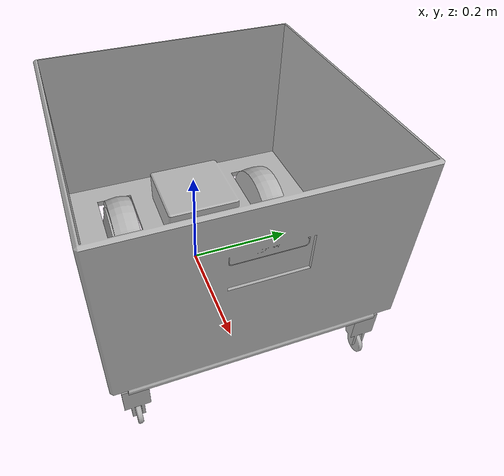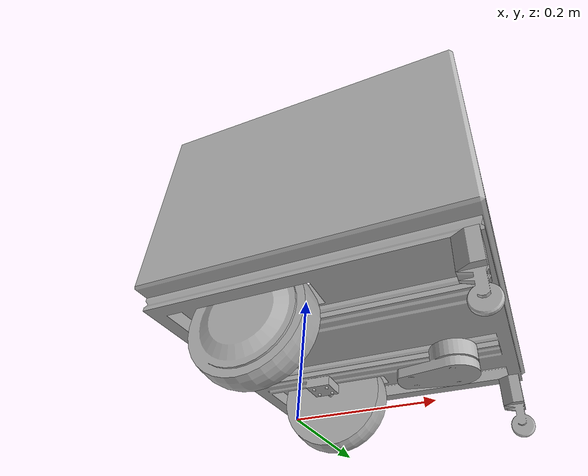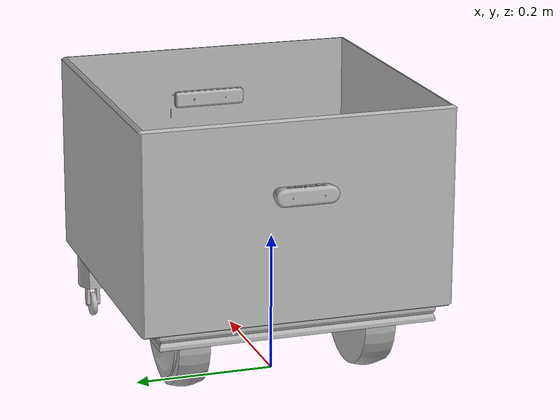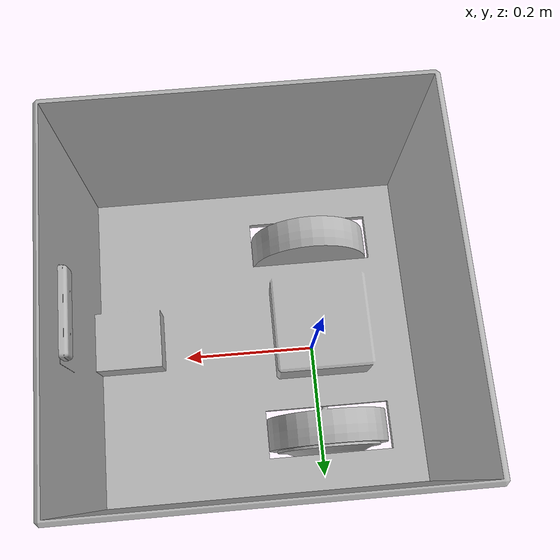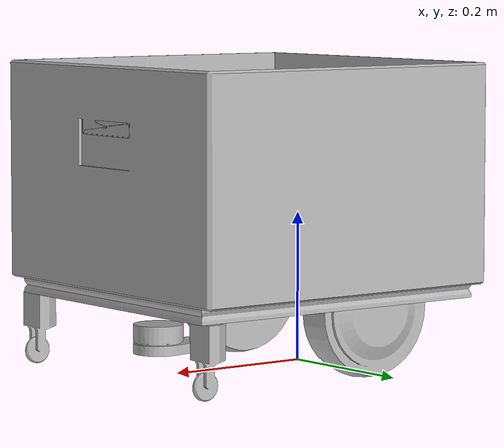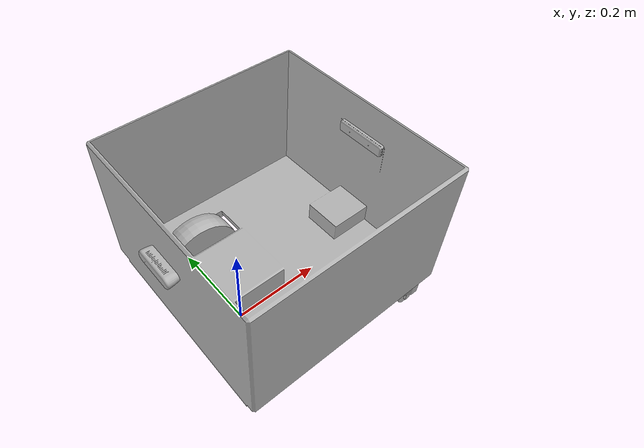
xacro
<?xml version="1.0" ?>
<robot name="qb" xmlns:xacro="http://www.ros.org/wiki/xacro">

<xacro:include filename="$(find qb_description)/urdf/materials.xacro" />
<xacro:include filename="$(find qb_description)/urdf/qb.trans" />
<xacro:include filename="$(find qb_description)/urdf/qb.gazebo" />
<link name="base_link">
  <inertial>
    <origin rpy="0 0 0" xyz="0.08517453560154699 0.001636240244356314 0.1850655388060331"/>
    <mass value="14"/>
    <inertia ixx="0.379166666667" ixy="-0.000605" ixz="0.002676" iyy="0.379166666667" iyz="-0.001318" izz="0.4725"/>
  </inertial>
  <visual>
    <origin rpy="0 0 0" xyz="0 0 0"/>
    <geometry>
      <mesh filename="package://qb_description/meshes/base_link.stl" scale="0.001 0.001 0.001"/>
    </geometry>
    <material name="silver"/>
  </visual>
  <collision>
    <origin rpy="0 0 0" xyz="0 0 0"/>
    <geometry>
      <mesh filename="package://qb_description/meshes/base_link.stl" scale="0.001 0.001 0.001"/>
    </geometry>
  </collision>
</link>

<link name="l_wheel_link">
  <inertial>
    <origin rpy="0 0 0" xyz="-6.007145793383156e-08 0.04051081667390975 9.236001824453055e-08"/>
    <mass value="3"/>
    <inertia ixx="0.0073" ixy="-0.0" ixz="0.0" iyy="0.0073" iyz="0.0" izz="0.0096"/>
  </inertial>
  <visual>
    <origin rpy="0 0 0" xyz="0.001625 -0.101197 -0.083775"/>
    <geometry>
      <mesh filename="package://qb_description/meshes/l_wheel_link.stl" scale="0.001 0.001 0.001"/>
    </geometry>
    <material name="silver"/>
  </visual>
  <collision>
    <origin rpy="1.57 0 0" xyz="0 0.04 0"/>
    <geometry>
      <cylinder radius="0.08" length="0.05"/>
    </geometry>
  </collision>
</link>

<link name="r_wheel_link">
  <inertial>
    <origin rpy="0 0 0" xyz="-6.060328737737992e-08 -0.039512860885770704 1.3917224245263426e-07"/>
    <mass value="3"/>
    <inertia ixx="0.0073" ixy="0.0" ixz="-0.0" iyy="0.0073" iyz="-0.0" izz="0.0096"/>
  </inertial>
  <visual>
    <origin rpy="0 0 0" xyz="0.001625 0.098431 -0.083775"/>
    <geometry>
      <mesh filename="package://qb_description/meshes/r_wheel_link.stl" scale="0.001 0.001 0.001"/>
    </geometry>
    <material name="silver"/>
  </visual>
  <collision>
    <origin rpy="-1.57 0 0" xyz="0 -0.04 0"/>
    <geometry>
      <cylinder radius="0.08" length="0.05"/>
    </geometry>
  </collision>
</link>

<link name="l_caster_link">
  <inertial>
    <origin rpy="0 0 0" xyz="0.0025889472718868545 -1.870937940406936e-07 -0.03221916382876208"/>
    <mass value="5"/>
    <inertia ixx="0.0135416666667" ixy="0.0" ixz="2.1e-05" iyy="0.0135416666667" iyz="-0.0" izz="0.00833333333333"/>
  </inertial>
  <visual>
    <origin rpy="0 0 0" xyz="-0.288 -0.191428 -0.095053"/>
    <geometry>
      <mesh filename="package://qb_description/meshes/l_caster_link.stl" scale="0.001 0.001 0.001"/>
    </geometry>
    <material name="silver"/>
  </visual>
  <collision>
    <origin rpy="0 0 0" xyz="-0.288 -0.191428 -0.095053"/>
    <geometry>
      <mesh filename="package://qb_description/meshes/l_caster_link.stl" scale="0.001 0.001 0.001"/>
    </geometry>
  </collision>
</link>

<link name="r_caster_link">
  <inertial>
    <origin rpy="0 0 0" xyz="0.002588950655702582 6.186932649532295e-08 -0.032219160354699364"/>
    <mass value="0.02"/>
    <inertia ixx="0.0135416666667" ixy="0.0" ixz="2.1e-05" iyy="0.0135416666667" iyz="-0.0" izz="0.00833333333333"/>
  </inertial>
  <visual>
    <origin rpy="0 0 0" xyz="-0.288 0.188178 -0.095053"/>
    <geometry>
      <mesh filename="package://qb_description/meshes/r_caster_link.stl" scale="0.001 0.001 0.001"/>
    </geometry>
    <material name="silver"/>
  </visual>
  <collision>
    <origin rpy="0 0 0" xyz="-0.288 0.188178 -0.095053"/>
    <geometry>
      <mesh filename="package://qb_description/meshes/r_caster_link.stl" scale="0.001 0.001 0.001"/>
    </geometry>
  </collision>
</link>

<link name="t265_link">
  <inertial>
    <origin rpy="0 0 0" xyz="-0.007003120392218842 0.0012343508315372854 9.087579541211532e-06"/>
    <mass value="0.12049783530780897"/>
    <inertia ixx="0.000118" ixy="-0.0" ixz="-0.0" iyy="8e-06" iyz="0.0" izz="0.000113"/>
  </inertial>
  <visual>
    <origin rpy="0 0 0" xyz="-0.310634 -0.0 -0.3272"/>
    <geometry>
      <mesh filename="package://qb_description/meshes/t265_link.stl" scale="0.001 0.001 0.001"/>
    </geometry>
    <material name="silver"/>
  </visual>
  <collision name="t265_collision_box">
    <origin rpy="0 0 0" xyz="0.03 -0.0 -0.2"/>
    <geometry>
      <box size="0.03 0.4 0.05"/>
    </geometry>
  </collision>
</link>

<link name="d435_link">
  <inertial>
    <origin rpy="0 0 0" xyz="0.012749615420696164 -2.7032282874069266e-05 -5.2944468881488405e-05"/>
    <mass value="0.3760990765533483"/>
    <inertia ixx="0.000235" ixy="0.0" ixz="-0.0" iyy="3.5e-05" iyz="0.0" izz="0.000237"/>
  </inertial>
  <visual>
    <origin rpy="0 0 0" xyz="0.135 -0.0 -0.3025"/>
    <geometry>
      <mesh filename="package://qb_description/meshes/d435_link.stl" scale="0.001 0.001 0.001"/>
    </geometry>
    <material name="silver"/>
  </visual>
  <collision>
    <origin rpy="0 0 0" xyz="0.135 -0.0 -0.3025"/>
    <geometry>
      <mesh filename="package://qb_description/meshes/d435_link.stl" scale="0.001 0.001 0.001"/>
    </geometry>
  </collision>
</link>

<link name="laser_link">
  <inertial>
    <origin rpy="0 0 0" xyz="-0.009810635325917028 1.2751683593881238e-07 -0.016625365915204318"/>
    <mass value="0.3"/>
    <inertia ixx="0.000625" ixy="0.0" ixz="0.000121" iyy="0.000625" iyz="-0.0" izz="0.000125"/>
  </inertial>
  <visual>
    <origin rpy="0 0 0" xyz="-0.23 -0.0 -0.08"/>
    <geometry>
      <mesh filename="package://qb_description/meshes/laser_link.stl" scale="0.001 0.001 0.001"/>
    </geometry>
    <material name="silver"/>
  </visual>
  <collision>
    <origin rpy="0 0 0" xyz="-0.23 -0.0 -0.08"/>
    <geometry>
      <mesh filename="package://qb_description/meshes/laser_link.stl" scale="0.001 0.001 0.001"/>
    </geometry>
  </collision>
</link>

<joint name="l_wheel_joint" type="continuous">
  <origin rpy="0 0 0" xyz="-0.001625 0.101197 0.083775"/>
  <parent link="base_link"/>
  <child link="l_wheel_link"/>
  <axis xyz="0.0 1.0 0.0"/>
</joint>

<joint name="r_wheel_joint" type="continuous">
  <origin rpy="0 0 0" xyz="-0.001625 -0.098431 0.083775"/>
  <parent link="base_link"/>
  <child link="r_wheel_link"/>
  <axis xyz="0.0 1.0 0.0"/>
</joint>

<joint name="l_caster_joint" type="fixed">
  <origin rpy="0 0 0" xyz="0.288 0.191428 0.095053"/>
  <parent link="base_link"/>
  <child link="l_caster_link"/>
</joint>

<joint name="r_caster_joint" type="fixed">
  <origin rpy="0 0 0" xyz="0.288 -0.188178 0.095053"/>
  <parent link="base_link"/>
  <child link="r_caster_link"/>
</joint>

<joint name="t265_joint" type="fixed">
  <origin rpy="0 0 0" xyz="0.310634 0.0 0.3272"/>
  <parent link="base_link"/>
  <child link="t265_link"/>
</joint>

<joint name="d435_joint" type="fixed">
  <origin rpy="0 0 3.141592" xyz="-0.135 0.0 0.3025"/>
  <parent link="base_link"/>
  <child link="d435_link"/>
</joint>

<joint name="lidar_joint" type="fixed">
  <origin rpy="3.141592 0 0" xyz="0.23 0.0 0.065"/>
  <parent link="base_link"/>
  <child link="laser_link"/>
</joint>

</robot>

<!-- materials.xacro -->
<robot name="qb" xmlns:xacro="http://www.ros.org/wiki/xacro" >

<material name="silver">
  <color rgba="0.700 0.700 0.700 1.000"/>
</material>

</robot>

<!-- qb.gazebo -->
<robot name="qb" xmlns:xacro="http://www.ros.org/wiki/xacro" >

<xacro:property name="body_color" value="Gazebo/Silver" />

<gazebo>
  <plugin filename="libgazebo_ros_control.so" name="control"/>
</gazebo>
<gazebo reference="base_link">
  <material>${body_color}</material>
  <mu1>0.2</mu1>
  <mu2>0.2</mu2>
  <selfCollide>true</selfCollide>
  <gravity>true</gravity>
</gazebo>

<gazebo reference="l_wheel_link">
  <material>${body_color}</material>
  <mu1>1500</mu1>
  <mu2>1500</mu2>
  <selfCollide>true</selfCollide>
</gazebo>

<gazebo reference="r_wheel_link">
  <material>${body_color}</material>
  <mu1>1500</mu1>
  <mu2>1500</mu2>
  <selfCollide>true</selfCollide>
</gazebo>

<gazebo reference="l_caster_link">
  <material>${body_color}</material>
  <mu1>0.1</mu1>
  <mu2>0.1</mu2>
  <selfCollide>true</selfCollide>
</gazebo>

<gazebo reference="r_caster_link">
  <material>${body_color}</material>
  <mu1>0.1</mu1>
  <mu2>0.1</mu2>
  <selfCollide>true</selfCollide>
</gazebo>

<gazebo reference="t265_link">
  <material>${body_color}</material>
  <mu1>0.2</mu1>
  <mu2>0.2</mu2>
  <selfCollide>true</selfCollide>
</gazebo>

<gazebo reference="d435_link">
  <material>${body_color}</material>
  <mu1>0.2</mu1>
  <mu2>0.2</mu2>
  <selfCollide>true</selfCollide>
</gazebo>

<gazebo reference="laser_link">
  <material>${body_color}</material>
  <mu1>0.2</mu1>
  <mu2>0.2</mu2>
  <selfCollide>true</selfCollide>
</gazebo>

<gazebo>
  <plugin name="differential_drive_controller" filename="libgazebo_ros_diff_drive.so">
    <!-- Plugin update rate in Hz -->
    <updateRate>10</updateRate>
    <!-- Name of left joint, defaults to `left_joint` -->
    <leftJoint>l_wheel_joint</leftJoint>
    <!-- Name of right joint, defaults to `right_joint` -->
    <rightJoint>r_wheel_joint</rightJoint>
    <!-- The distance from the center of one wheel to the other, in meters, defaults to 0.34 m -->
    <wheelSeparation>0.275</wheelSeparation>
    <!-- Diameter of the wheels, in meters, defaults to 0.15 m -->
    <wheelDiameter>0.160</wheelDiameter>
    <!-- Wheel acceleration, in rad/s^2, defaults to 0.0 rad/s^2 -->
    <wheelAcceleration>0.10</wheelAcceleration>
    <!-- Maximum torque which the wheels can produce, in Nm, defaults to 5 Nm -->
    <wheelTorque>10</wheelTorque>
    <!-- Topic to receive geometry_msgs/Twist message commands, defaults to `cmd_vel` -->
    <commandTopic>cmd_vel</commandTopic>
    <!-- Topic to publish nav_msgs/Odometry messages, defaults to `odom` -->
    <odometryTopic>odom</odometryTopic>
    <!-- Odometry frame, defaults to `odom` -->
    <odometryFrame>odom</odometryFrame>
    <!-- Robot frame to calculate odometry from, defaults to `base_footprint` -->
    <robotBaseFrame>base_link</robotBaseFrame>
    <!-- Odometry source, 0 for ENCODER, 1 for WORLD, defaults to WORLD -->
    <odometrySource>WORLD</odometrySource>
    <!-- Set to true to publish transforms for the wheel links, defaults to false -->
    <publishWheelTF>true</publishWheelTF>
    <!-- Set to true to publish transforms for the odometry, defaults to true -->
    <publishOdom>true</publishOdom>
    <!-- Set to true to publish transforms for the odometry, defaults to true -->
    <publishOdomTF>true</publishOdomTF>
    <!-- Set to true to publish transforms, defaults to true -->
    <publishTf>true</publishTf>
    <!-- Set to true to publish sensor_msgs/JointState on /joint_states for the wheel joints, defaults to false -->
    <publishWheelJointState>true</publishWheelJointState>
    <!-- Set to true to swap right and left wheels, defaults to true -->
    <legacyMode>false</legacyMode>
  </plugin>
</gazebo>

<gazebo reference="laser_link">
    <sensor type="gpu_ray" name="head_hokuyo_sensor">
      <pose>0 0 0 0 0 0</pose>
      <visualize>true</visualize>
      <update_rate>40</update_rate>
      <ray>
        <scan>
          <horizontal>
            <samples>1440</samples>
            <resolution>1</resolution>
            <min_angle>-3.141592</min_angle>
            <max_angle>3.141592</max_angle>
          </horizontal>
        </scan>
        <range>
          <min>0.36</min>
          <max>12.0</max>
          <resolution>0.01</resolution>
        </range>
        <noise>
          <type>gaussian</type>
          <mean>0.0</mean>
          <stddev>0.01</stddev>
        </noise>
      </ray>
      <plugin name="gazebo_ros_head_hokuyo_controller" filename="libgazebo_ros_gpu_laser.so">
        <topicName>/scan</topicName>
        <frameName>laser_link</frameName>
      </plugin>
    </sensor>
  </gazebo>

  <!-- qb bumper sensor -->
  <gazebo reference="base_link">
    <sensor name="qb_bumper" type="contact">
      <always_on>true</always_on>
      <update_rate>10</update_rate>
      <contact>
        <!-- the name of the collision is generated during the conversion from URDF to SDF -->
        <!-- use xacro_to_sdf_converter.sh to find out the generated name -->
        <collision>base_link_fixed_joint_lump__t265_collision_box_collision_5</collision>
      </contact>
      <plugin name="gazebo_ros_bumper_controller" filename="libgazebo_ros_bumper.so">
          <bumperTopicName>qb_bumper</bumperTopicName>
          <frameName>world</frameName>
          <always_on>true</always_on>
          <update_rate>10</update_rate>
      </plugin>
    </sensor>
  </gazebo>

</robot>
